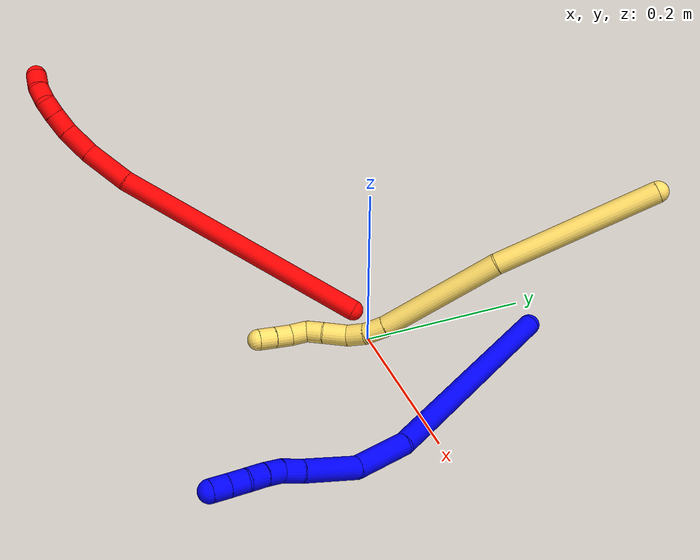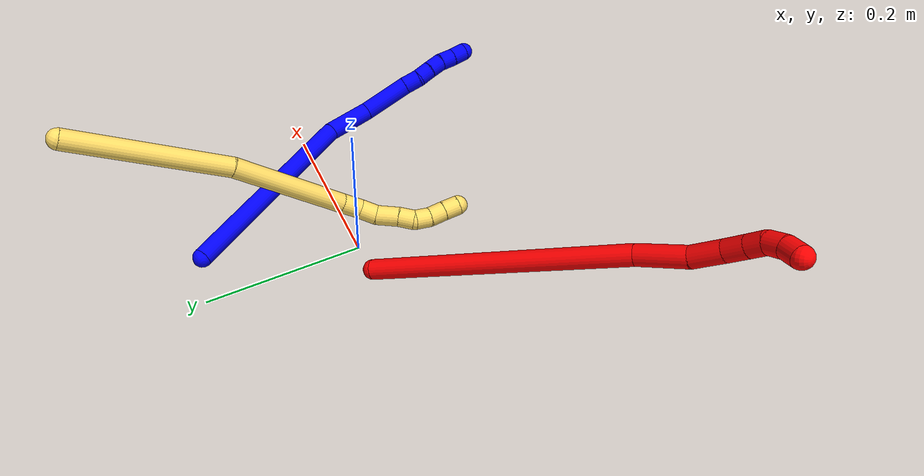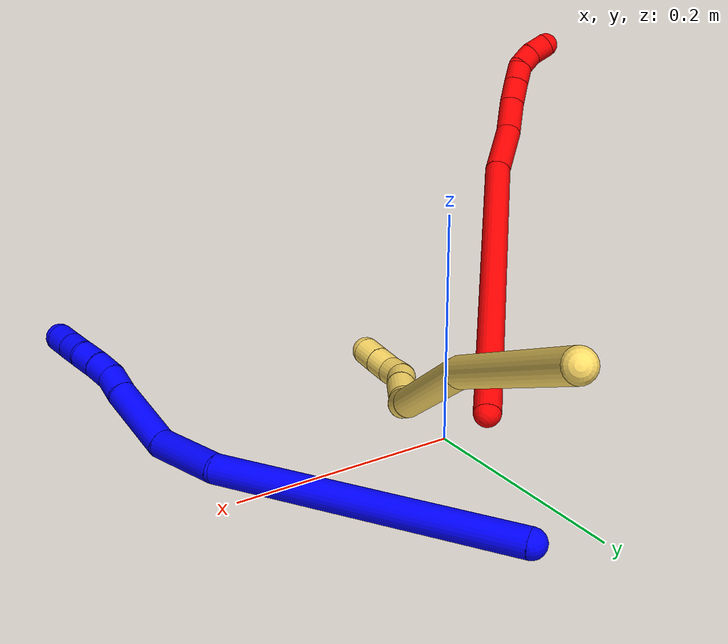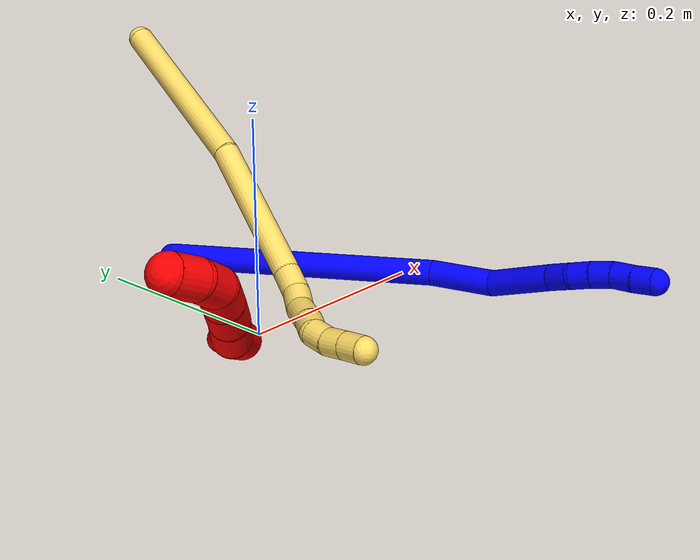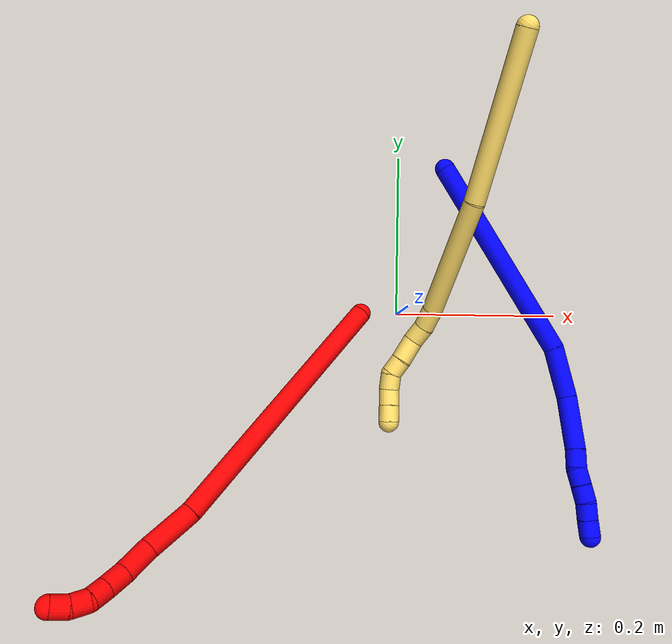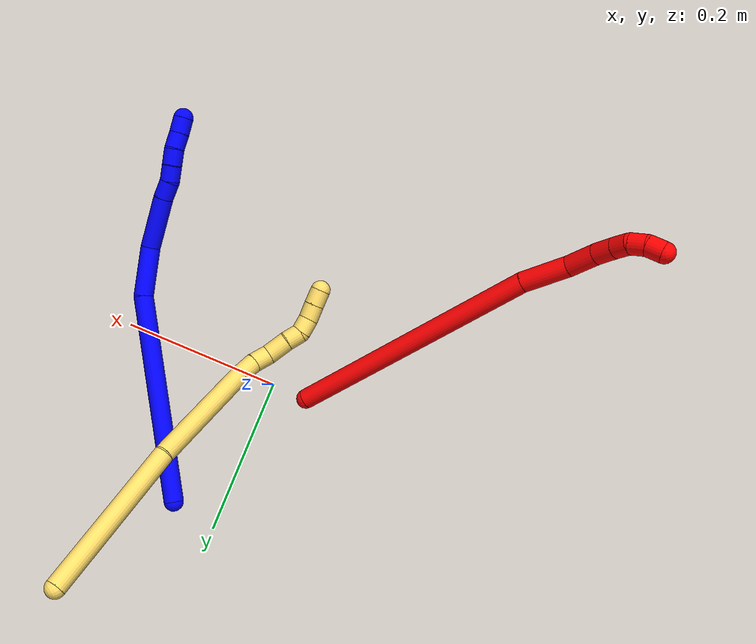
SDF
<sdf version="1.7">
 <world name="default">
  <model name="photoneo_s_sensor">
   <static>1</static>
   <pose>0 0 2 1.57079 1.57079 3.14159</pose>
   <link name="link">
    <inertial><mass>0.1</mass></inertial>
    <sensor name="sensor" type="depth">
     <update_rate>30</update_rate>
     <camera>
      <horizontal_fov>1.22</horizontal_fov>
      <image><width>1920</width><height>1200</height><format>B8G8R8</format></image>
      <clip><near>0.1</near><far>4</far></clip>
      <depth_camera><output>points</output></depth_camera>
     </camera>
     <plugin name="camera_plugin" filename="libgazebo_ros_depth_camera.so">
      <baseline>0.2</baseline>
      <alwaysOn>1</alwaysOn>
      <updateRate>0.0</updateRate>
      <cameraName>camera_ir</cameraName>
      <imageTopicName>/camera/color/image_raw</imageTopicName>
      <cameraInfoTopicName>/camera/color/camera_info</cameraInfoTopicName>
      <depthImageTopicName>/camera/depth/image_raw</depthImageTopicName>
      <depthImageCameraInfoTopicName>/camera/depth/camera_info</depthImageCameraInfoTopicName>
      <pointCloudTopicName>/camera/depth/points</pointCloudTopicName>
      <frameName>fr_optical</frameName>
      <pointCloudCutoff>0.1</pointCloudCutoff>
      <pointCloudCutoffMax>2.0</pointCloudCutoffMax>
      <distortionK1>0</distortionK1>
      <distortionK2>0</distortionK2>
      <distortionK3>0</distortionK3>
      <distortionT1>0</distortionT1>
      <distortionT2>0</distortionT2>
      <CxPrime>0</CxPrime>
      <Cx>0</Cx>
      <Cy>0</Cy>
      <focalLength>0</focalLength>
      <hackBaseline>0</hackBaseline>
     </plugin>
    </sensor>
   </link>
  </model>
  <model name="bin">
   <static>1</static>
   <link name="bottom">
    <collision name="collision-bottom">
     <pose>0 0 -0.01 0 -0 0</pose>
     <geometry><box><size>0.8 0.6 0.02</size></box></geometry>
     <surface>
      <friction><ode><mu>100</mu><mu2>100</mu2></ode></friction>
      <contact><collide_bitmask>65535</collide_bitmask></contact>
     </surface>
    </collision>
   </link>
   <link name="west_wall">
    <collision name="collision-west_wall">
     <pose>-0.41 0 0.1 0 -0 0</pose>
     <geometry><box><size>0.02 0.6 0.2</size></box></geometry>
     <surface>
      <friction><ode><mu>100</mu><mu2>100</mu2></ode></friction>
      <contact><collide_bitmask>65535</collide_bitmask></contact>
     </surface>
    </collision>
   </link>
   <link name="east_wall">
    <collision name="collision-east_wall">
     <pose>0.41 0 0.1 0 -0 0</pose>
     <geometry><box><size>0.02 0.6 0.2</size></box></geometry>
     <surface>
      <friction><ode><mu>100</mu><mu2>100</mu2></ode></friction>
      <contact><collide_bitmask>65535</collide_bitmask></contact>
     </surface>
    </collision>
   </link>
   <link name="south_wall">
    <collision name="collision-south_wall">
     <pose>0 -0.31 0.1 0 -0 0</pose>
     <geometry><box><size>0.8 0.02 0.2</size></box></geometry>
     <surface>
      <friction><ode><mu>100</mu><mu2>100</mu2></ode></friction>
      <contact><collide_bitmask>65535</collide_bitmask></contact>
     </surface>
    </collision>
   </link>
   <link name="north_wall">
    <collision name="collision-north_wall">
     <pose>0 0.31 0.1 0 -0 0</pose>
     <geometry><box><size>0.8 0.02 0.2</size></box></geometry>
     <surface>
      <friction><ode><mu>100</mu><mu2>100</mu2></ode></friction>
      <contact><collide_bitmask>65535</collide_bitmask></contact>
     </surface>
    </collision>
   </link>
  </model>
  <model name="1">
   <static>0</static>
   <link name="1">
    <collision name="collision-cylinder-e_1_1_4">
     <pose>0.039754 -0.099244 0.07849 0.90164 0.30442 0.148236</pose>
     <geometry><cylinder><radius>0.0125</radius><length>0.265257</length></cylinder></geometry>
     <surface>
      <friction><ode><mu>1.16</mu><mu2>1.16</mu2><slip1>0</slip1><slip2>0</slip2></ode></friction>
      <contact><ode><kp>1e+06</kp><kd>1</kd><max_vel>0</max_vel><min_depth>0.001</min_depth></ode></contact>
     </surface>
    </collision>
    <visual name="visual-cylinder-e_1_1_4">
     <pose>0.039754 -0.099244 0.07849 0.90164 0.30442 0.148236</pose>
     <geometry><cylinder><radius>0.0125</radius><length>0.265257</length></cylinder></geometry>
     <material><ambient>0 0 1 1</ambient></material>
    </visual>
    <collision name="collision-cylinder-e_2_4_5">
     <pose>0.092423 -0.225521 0.167946 1.18543 0.416775 0.282927</pose>
     <geometry><cylinder><radius>0.0125</radius><length>0.063808</length></cylinder></geometry>
     <surface>
      <friction><ode><mu>1.16</mu><mu2>1.16</mu2><slip1>0</slip1><slip2>0</slip2></ode></friction>
      <contact><ode><kp>1e+06</kp><kd>1</kd><max_vel>0</max_vel><min_depth>0.001</min_depth></ode></contact>
     </surface>
    </collision>
    <visual name="visual-cylinder-e_2_4_5">
     <pose>0.092423 -0.225521 0.167946 1.18543 0.416775 0.282927</pose>
     <geometry><cylinder><radius>0.0125</radius><length>0.063808</length></cylinder></geometry>
     <material><ambient>0 0 1 1</ambient></material>
    </visual>
    <collision name="collision-cylinder-e_3_5_6">
     <pose>0.111017 -0.28537 0.182448 1.46348 0.17038 0.153082</pose>
     <geometry><cylinder><radius>0.0125</radius><length>0.066981</length></cylinder></geometry>
     <surface>
      <friction><ode><mu>1.16</mu><mu2>1.16</mu2><slip1>0</slip1><slip2>0</slip2></ode></friction>
      <contact><ode><kp>1e+06</kp><kd>1</kd><max_vel>0</max_vel><min_depth>0.001</min_depth></ode></contact>
     </surface>
    </collision>
    <visual name="visual-cylinder-e_3_5_6">
     <pose>0.111017 -0.28537 0.182448 1.46348 0.17038 0.153082</pose>
     <geometry><cylinder><radius>0.0125</radius><length>0.066981</length></cylinder></geometry>
     <material><ambient>0 0 1 1</ambient></material>
    </visual>
    <collision name="collision-cylinder-e_4_6_7">
     <pose>0.118943 -0.3294 0.185966 1.57229 0.197746 0.198039</pose>
     <geometry><cylinder><radius>0.0125</radius><length>0.022873</length></cylinder></geometry>
     <surface>
      <friction><ode><mu>1.16</mu><mu2>1.16</mu2><slip1>0</slip1><slip2>0</slip2></ode></friction>
      <contact><ode><kp>1e+06</kp><kd>1</kd><max_vel>0</max_vel><min_depth>0.001</min_depth></ode></contact>
     </surface>
    </collision>
    <visual name="visual-cylinder-e_4_6_7">
     <pose>0.118943 -0.3294 0.185966 1.57229 0.197746 0.198039</pose>
     <geometry><cylinder><radius>0.0125</radius><length>0.022873</length></cylinder></geometry>
     <material><ambient>0 0 1 1</ambient></material>
    </visual>
    <collision name="collision-cylinder-e_5_7_8">
     <pose>0.123179 -0.350255 0.188508 1.31149 0.196833 0.151625</pose>
     <geometry><cylinder><radius>0.0125</radius><length>0.020344</length></cylinder></geometry>
     <surface>
      <friction><ode><mu>1.16</mu><mu2>1.16</mu2><slip1>0</slip1><slip2>0</slip2></ode></friction>
      <contact><ode><kp>1e+06</kp><kd>1</kd><max_vel>0</max_vel><min_depth>0.001</min_depth></ode></contact>
     </surface>
    </collision>
    <visual name="visual-cylinder-e_5_7_8">
     <pose>0.123179 -0.350255 0.188508 1.31149 0.196833 0.151625</pose>
     <geometry><cylinder><radius>0.0125</radius><length>0.020344</length></cylinder></geometry>
     <material><ambient>0 0 1 1</ambient></material>
    </visual>
    <collision name="collision-cylinder-e_6_8_9">
     <pose>0.12788 -0.36939 0.193927 1.27799 0.267009 0.198911</pose>
     <geometry><cylinder><radius>0.0125</radius><length>0.020557</length></cylinder></geometry>
     <surface>
      <friction><ode><mu>1.16</mu><mu2>1.16</mu2><slip1>0</slip1><slip2>0</slip2></ode></friction>
      <contact><ode><kp>1e+06</kp><kd>1</kd><max_vel>0</max_vel><min_depth>0.001</min_depth></ode></contact>
     </surface>
    </collision>
    <visual name="visual-cylinder-e_6_8_9">
     <pose>0.12788 -0.36939 0.193927 1.27799 0.267009 0.198911</pose>
     <geometry><cylinder><radius>0.0125</radius><length>0.020557</length></cylinder></geometry>
     <material><ambient>0 0 1 1</ambient></material>
    </visual>
    <collision name="collision-cylinder-e_7_9_10">
     <pose>0.134894 -0.387782 0.198489 1.38206 0.443345 0.368573</pose>
     <geometry><cylinder><radius>0.0125</radius><length>0.020061</length></cylinder></geometry>
     <surface>
      <friction><ode><mu>1.16</mu><mu2>1.16</mu2><slip1>0</slip1><slip2>0</slip2></ode></friction>
      <contact><ode><kp>1e+06</kp><kd>1</kd><max_vel>0</max_vel><min_depth>0.001</min_depth></ode></contact>
     </surface>
    </collision>
    <visual name="visual-cylinder-e_7_9_10">
     <pose>0.134894 -0.387782 0.198489 1.38206 0.443345 0.368573</pose>
     <geometry><cylinder><radius>0.0125</radius><length>0.020061</length></cylinder></geometry>
     <material><ambient>0 0 1 1</ambient></material>
    </visual>
    <collision name="collision-cylinder-e_8_10_2">
     <pose>0.14294 -0.405804 0.20218 1.3559 0.381264 0.308331</pose>
     <geometry><cylinder><radius>0.0125</radius><length>0.020118</length></cylinder></geometry>
     <surface>
      <friction><ode><mu>1.16</mu><mu2>1.16</mu2><slip1>0</slip1><slip2>0</slip2></ode></friction>
      <contact><ode><kp>1e+06</kp><kd>1</kd><max_vel>0</max_vel><min_depth>0.001</min_depth></ode></contact>
     </surface>
    </collision>
    <visual name="visual-cylinder-e_8_10_2">
     <pose>0.14294 -0.405804 0.20218 1.3559 0.381264 0.308331</pose>
     <geometry><cylinder><radius>0.0125</radius><length>0.020118</length></cylinder></geometry>
     <material><ambient>0 0 1 1</ambient></material>
    </visual>
    <collision name="collision-sphere-2">
     <pose>0.146683 -0.414926 0.204171 0 -0 0</pose>
     <geometry><sphere><radius>0.0125</radius></sphere></geometry>
     <surface>
      <friction><ode><mu>1.16</mu><mu2>1.16</mu2><slip1>0</slip1><slip2>0</slip2></ode></friction>
      <contact><ode><kp>1e+06</kp><kd>1</kd><max_vel>0</max_vel><min_depth>0.001</min_depth></ode></contact>
     </surface>
    </collision>
    <visual name="visual-sphere-2">
     <pose>0.146683 -0.414926 0.204171 0 -0 0</pose>
     <geometry><sphere><radius>0.0125</radius></sphere></geometry>
     <material><ambient>0 0 1 1</ambient></material>
    </visual>
    <collision name="collision-sphere-10">
     <pose>0.139197 -0.396682 0.200189 0 -0 0</pose>
     <geometry><sphere><radius>0.0125</radius></sphere></geometry>
     <surface>
      <friction><ode><mu>1.16</mu><mu2>1.16</mu2><slip1>0</slip1><slip2>0</slip2></ode></friction>
      <contact><ode><kp>1e+06</kp><kd>1</kd><max_vel>0</max_vel><min_depth>0.001</min_depth></ode></contact>
     </surface>
    </collision>
    <visual name="visual-sphere-10">
     <pose>0.139197 -0.396682 0.200189 0 -0 0</pose>
     <geometry><sphere><radius>0.0125</radius></sphere></geometry>
     <material><ambient>0 0 1 1</ambient></material>
    </visual>
    <collision name="collision-sphere-9">
     <pose>0.130592 -0.378882 0.196789 0 -0 0</pose>
     <geometry><sphere><radius>0.0125</radius></sphere></geometry>
     <surface>
      <friction><ode><mu>1.16</mu><mu2>1.16</mu2><slip1>0</slip1><slip2>0</slip2></ode></friction>
      <contact><ode><kp>1e+06</kp><kd>1</kd><max_vel>0</max_vel><min_depth>0.001</min_depth></ode></contact>
     </surface>
    </collision>
    <visual name="visual-sphere-9">
     <pose>0.130592 -0.378882 0.196789 0 -0 0</pose>
     <geometry><sphere><radius>0.0125</radius></sphere></geometry>
     <material><ambient>0 0 1 1</ambient></material>
    </visual>
    <collision name="collision-sphere-4">
     <pose>0.079508 -0.198487 0.15698 0 -0 0</pose>
     <geometry><sphere><radius>0.0125</radius></sphere></geometry>
     <surface>
      <friction><ode><mu>1.16</mu><mu2>1.16</mu2><slip1>0</slip1><slip2>0</slip2></ode></friction>
      <contact><ode><kp>1e+06</kp><kd>1</kd><max_vel>0</max_vel><min_depth>0.001</min_depth></ode></contact>
     </surface>
    </collision>
    <visual name="visual-sphere-4">
     <pose>0.079508 -0.198487 0.15698 0 -0 0</pose>
     <geometry><sphere><radius>0.0125</radius></sphere></geometry>
     <material><ambient>0 0 1 1</ambient></material>
    </visual>
    <collision name="collision-sphere-1">
     <geometry><sphere><radius>0.0125</radius></sphere></geometry>
     <surface>
      <friction><ode><mu>1.16</mu><mu2>1.16</mu2><slip1>0</slip1><slip2>0</slip2></ode></friction>
      <contact><ode><kp>1e+06</kp><kd>1</kd><max_vel>0</max_vel><min_depth>0.001</min_depth></ode></contact>
     </surface>
    </collision>
    <visual name="visual-sphere-1">
     <geometry><sphere><radius>0.0125</radius></sphere></geometry>
     <material><ambient>0 0 1 1</ambient></material>
    </visual>
    <collision name="collision-sphere-8">
     <pose>0.125168 -0.359897 0.191065 0 -0 0</pose>
     <geometry><sphere><radius>0.0125</radius></sphere></geometry>
     <surface>
      <friction><ode><mu>1.16</mu><mu2>1.16</mu2><slip1>0</slip1><slip2>0</slip2></ode></friction>
      <contact><ode><kp>1e+06</kp><kd>1</kd><max_vel>0</max_vel><min_depth>0.001</min_depth></ode></contact>
     </surface>
    </collision>
    <visual name="visual-sphere-8">
     <pose>0.125168 -0.359897 0.191065 0 -0 0</pose>
     <geometry><sphere><radius>0.0125</radius></sphere></geometry>
     <material><ambient>0 0 1 1</ambient></material>
    </visual>
    <collision name="collision-sphere-5">
     <pose>0.105339 -0.252554 0.178912 0 -0 0</pose>
     <geometry><sphere><radius>0.0125</radius></sphere></geometry>
     <surface>
      <friction><ode><mu>1.16</mu><mu2>1.16</mu2><slip1>0</slip1><slip2>0</slip2></ode></friction>
      <contact><ode><kp>1e+06</kp><kd>1</kd><max_vel>0</max_vel><min_depth>0.001</min_depth></ode></contact>
     </surface>
    </collision>
    <visual name="visual-sphere-5">
     <pose>0.105339 -0.252554 0.178912 0 -0 0</pose>
     <geometry><sphere><radius>0.0125</radius></sphere></geometry>
     <material><ambient>0 0 1 1</ambient></material>
    </visual>
    <collision name="collision-sphere-6">
     <pose>0.116696 -0.318186 0.185983 0 -0 0</pose>
     <geometry><sphere><radius>0.0125</radius></sphere></geometry>
     <surface>
      <friction><ode><mu>1.16</mu><mu2>1.16</mu2><slip1>0</slip1><slip2>0</slip2></ode></friction>
      <contact><ode><kp>1e+06</kp><kd>1</kd><max_vel>0</max_vel><min_depth>0.001</min_depth></ode></contact>
     </surface>
    </collision>
    <visual name="visual-sphere-6">
     <pose>0.116696 -0.318186 0.185983 0 -0 0</pose>
     <geometry><sphere><radius>0.0125</radius></sphere></geometry>
     <material><ambient>0 0 1 1</ambient></material>
    </visual>
    <collision name="collision-sphere-7">
     <pose>0.121189 -0.340613 0.18595 0 -0 0</pose>
     <geometry><sphere><radius>0.0125</radius></sphere></geometry>
     <surface>
      <friction><ode><mu>1.16</mu><mu2>1.16</mu2><slip1>0</slip1><slip2>0</slip2></ode></friction>
      <contact><ode><kp>1e+06</kp><kd>1</kd><max_vel>0</max_vel><min_depth>0.001</min_depth></ode></contact>
     </surface>
    </collision>
    <visual name="visual-sphere-7">
     <pose>0.121189 -0.340613 0.18595 0 -0 0</pose>
     <geometry><sphere><radius>0.0125</radius></sphere></geometry>
     <material><ambient>0 0 1 1</ambient></material>
    </visual>
    <inertial>
     <pose>0.074631 -0.196053 0.127763 0 -0 0</pose>
     <mass>0.5</mass>
     <inertia>
      <ixx>0.001777</ixx>
      <ixy>0</ixy>
      <ixz>0</ixz>
      <iyy>0.001232</iyy>
      <iyz>0</iyz>
      <izz>0.000756</izz>
     </inertia>
    </inertial>
   </link>
   <pose>0.058605 0.185474 0.011497 -1.9445 1.01314 -1.98854</pose>
  </model>
  <model name="2">
   <static>0</static>
   <link name="2">
    <collision name="collision-cylinder-e_1_1_4">
     <pose>-0.060789 -0.037595 0.142839 0.257364 -0.390436 -0.051162</pose>
     <geometry><cylinder><radius>0.0125</radius><length>0.319448</length></cylinder></geometry>
     <surface>
      <friction><ode><mu>1.16</mu><mu2>1.16</mu2><slip1>0</slip1><slip2>0</slip2></ode></friction>
      <contact><ode><kp>1e+06</kp><kd>1</kd><max_vel>0</max_vel><min_depth>0.001</min_depth></ode></contact>
     </surface>
    </collision>
    <visual name="visual-cylinder-e_1_1_4">
     <pose>-0.060789 -0.037595 0.142839 0.257364 -0.390436 -0.051162</pose>
     <geometry><cylinder><radius>0.0125</radius><length>0.319448</length></cylinder></geometry>
     <material><ambient>1 0 0 1</ambient></material>
    </visual>
    <collision name="collision-cylinder-e_2_4_5">
     <pose>-0.128835 -0.079797 0.313423 0.164524 -0.252479 -0.020927</pose>
     <geometry><cylinder><radius>0.0125</radius><length>0.058092</length></cylinder></geometry>
     <surface>
      <friction><ode><mu>1.16</mu><mu2>1.16</mu2><slip1>0</slip1><slip2>0</slip2></ode></friction>
      <contact><ode><kp>1e+06</kp><kd>1</kd><max_vel>0</max_vel><min_depth>0.001</min_depth></ode></contact>
     </surface>
    </collision>
    <visual name="visual-cylinder-e_2_4_5">
     <pose>-0.128835 -0.079797 0.313423 0.164524 -0.252479 -0.020927</pose>
     <geometry><cylinder><radius>0.0125</radius><length>0.058092</length></cylinder></geometry>
     <material><ambient>1 0 0 1</ambient></material>
    </visual>
    <collision name="collision-cylinder-e_3_5_6">
     <pose>-0.138553 -0.091341 0.358173 0.387378 -0.133281 -0.02618</pose>
     <geometry><cylinder><radius>0.0125</radius><length>0.037058</length></cylinder></geometry>
     <surface>
      <friction><ode><mu>1.16</mu><mu2>1.16</mu2><slip1>0</slip1><slip2>0</slip2></ode></friction>
      <contact><ode><kp>1e+06</kp><kd>1</kd><max_vel>0</max_vel><min_depth>0.001</min_depth></ode></contact>
     </surface>
    </collision>
    <visual name="visual-cylinder-e_3_5_6">
     <pose>-0.138553 -0.091341 0.358173 0.387378 -0.133281 -0.02618</pose>
     <geometry><cylinder><radius>0.0125</radius><length>0.037058</length></cylinder></geometry>
     <material><ambient>1 0 0 1</ambient></material>
    </visual>
    <collision name="collision-cylinder-e_4_6_7">
     <pose>-0.140973 -0.103192 0.386817 0.39944 0.003361 0.00068</pose>
     <geometry><cylinder><radius>0.0125</radius><length>0.02527</length></cylinder></geometry>
     <surface>
      <friction><ode><mu>1.16</mu><mu2>1.16</mu2><slip1>0</slip1><slip2>0</slip2></ode></friction>
      <contact><ode><kp>1e+06</kp><kd>1</kd><max_vel>0</max_vel><min_depth>0.001</min_depth></ode></contact>
     </surface>
    </collision>
    <visual name="visual-cylinder-e_4_6_7">
     <pose>-0.140973 -0.103192 0.386817 0.39944 0.003361 0.00068</pose>
     <geometry><cylinder><radius>0.0125</radius><length>0.02527</length></cylinder></geometry>
     <material><ambient>1 0 0 1</ambient></material>
    </visual>
    <collision name="collision-cylinder-e_5_7_8">
     <pose>-0.140232 -0.112054 0.407679 0.404546 0.069505 0.014259</pose>
     <geometry><cylinder><radius>0.0125</radius><length>0.020111</length></cylinder></geometry>
     <surface>
      <friction><ode><mu>1.16</mu><mu2>1.16</mu2><slip1>0</slip1><slip2>0</slip2></ode></friction>
      <contact><ode><kp>1e+06</kp><kd>1</kd><max_vel>0</max_vel><min_depth>0.001</min_depth></ode></contact>
     </surface>
    </collision>
    <visual name="visual-cylinder-e_5_7_8">
     <pose>-0.140232 -0.112054 0.407679 0.404546 0.069505 0.014259</pose>
     <geometry><cylinder><radius>0.0125</radius><length>0.020111</length></cylinder></geometry>
     <material><ambient>1 0 0 1</ambient></material>
    </visual>
    <collision name="collision-cylinder-e_6_8_9">
     <pose>-0.13784 -0.115918 0.426763 -0.008617 0.170063 -0.000735</pose>
     <geometry><cylinder><radius>0.0125</radius><length>0.020016</length></cylinder></geometry>
     <surface>
      <friction><ode><mu>1.16</mu><mu2>1.16</mu2><slip1>0</slip1><slip2>0</slip2></ode></friction>
      <contact><ode><kp>1e+06</kp><kd>1</kd><max_vel>0</max_vel><min_depth>0.001</min_depth></ode></contact>
     </surface>
    </collision>
    <visual name="visual-cylinder-e_6_8_9">
     <pose>-0.13784 -0.115918 0.426763 -0.008617 0.170063 -0.000735</pose>
     <geometry><cylinder><radius>0.0125</radius><length>0.020016</length></cylinder></geometry>
     <material><ambient>1 0 0 1</ambient></material>
    </visual>
    <collision name="collision-cylinder-e_7_9_2">
     <pose>-0.13264 -0.113466 0.44569 -0.255396 0.358182 -0.046479</pose>
     <geometry><cylinder><radius>0.0125</radius><length>0.020005</length></cylinder></geometry>
     <surface>
      <friction><ode><mu>1.16</mu><mu2>1.16</mu2><slip1>0</slip1><slip2>0</slip2></ode></friction>
      <contact><ode><kp>1e+06</kp><kd>1</kd><max_vel>0</max_vel><min_depth>0.001</min_depth></ode></contact>
     </surface>
    </collision>
    <visual name="visual-cylinder-e_7_9_2">
     <pose>-0.13264 -0.113466 0.44569 -0.255396 0.358182 -0.046479</pose>
     <geometry><cylinder><radius>0.0125</radius><length>0.020005</length></cylinder></geometry>
     <material><ambient>1 0 0 1</ambient></material>
    </visual>
    <collision name="collision-sphere-2">
     <pose>-0.129133 -0.111099 0.454754 0 -0 0</pose>
     <geometry><sphere><radius>0.0125</radius></sphere></geometry>
     <surface>
      <friction><ode><mu>1.16</mu><mu2>1.16</mu2><slip1>0</slip1><slip2>0</slip2></ode></friction>
      <contact><ode><kp>1e+06</kp><kd>1</kd><max_vel>0</max_vel><min_depth>0.001</min_depth></ode></contact>
     </surface>
    </collision>
    <visual name="visual-sphere-2">
     <pose>-0.129133 -0.111099 0.454754 0 -0 0</pose>
     <geometry><sphere><radius>0.0125</radius></sphere></geometry>
     <material><ambient>1 0 0 1</ambient></material>
    </visual>
    <collision name="collision-sphere-9">
     <pose>-0.136146 -0.115833 0.436626 0 -0 0</pose>
     <geometry><sphere><radius>0.0125</radius></sphere></geometry>
     <surface>
      <friction><ode><mu>1.16</mu><mu2>1.16</mu2><slip1>0</slip1><slip2>0</slip2></ode></friction>
      <contact><ode><kp>1e+06</kp><kd>1</kd><max_vel>0</max_vel><min_depth>0.001</min_depth></ode></contact>
     </surface>
    </collision>
    <visual name="visual-sphere-9">
     <pose>-0.136146 -0.115833 0.436626 0 -0 0</pose>
     <geometry><sphere><radius>0.0125</radius></sphere></geometry>
     <material><ambient>1 0 0 1</ambient></material>
    </visual>
    <collision name="collision-sphere-4">
     <pose>-0.121579 -0.075191 0.285678 0 -0 0</pose>
     <geometry><sphere><radius>0.0125</radius></sphere></geometry>
     <surface>
      <friction><ode><mu>1.16</mu><mu2>1.16</mu2><slip1>0</slip1><slip2>0</slip2></ode></friction>
      <contact><ode><kp>1e+06</kp><kd>1</kd><max_vel>0</max_vel><min_depth>0.001</min_depth></ode></contact>
     </surface>
    </collision>
    <visual name="visual-sphere-4">
     <pose>-0.121579 -0.075191 0.285678 0 -0 0</pose>
     <geometry><sphere><radius>0.0125</radius></sphere></geometry>
     <material><ambient>1 0 0 1</ambient></material>
    </visual>
    <collision name="collision-sphere-1">
     <geometry><sphere><radius>0.0125</radius></sphere></geometry>
     <surface>
      <friction><ode><mu>1.16</mu><mu2>1.16</mu2><slip1>0</slip1><slip2>0</slip2></ode></friction>
      <contact><ode><kp>1e+06</kp><kd>1</kd><max_vel>0</max_vel><min_depth>0.001</min_depth></ode></contact>
     </surface>
    </collision>
    <visual name="visual-sphere-1">
     <geometry><sphere><radius>0.0125</radius></sphere></geometry>
     <material><ambient>1 0 0 1</ambient></material>
    </visual>
    <collision name="collision-sphere-8">
     <pose>-0.139534 -0.116003 0.4169 0 -0 0</pose>
     <geometry><sphere><radius>0.0125</radius></sphere></geometry>
     <surface>
      <friction><ode><mu>1.16</mu><mu2>1.16</mu2><slip1>0</slip1><slip2>0</slip2></ode></friction>
      <contact><ode><kp>1e+06</kp><kd>1</kd><max_vel>0</max_vel><min_depth>0.001</min_depth></ode></contact>
     </surface>
    </collision>
    <visual name="visual-sphere-8">
     <pose>-0.139534 -0.116003 0.4169 0 -0 0</pose>
     <geometry><sphere><radius>0.0125</radius></sphere></geometry>
     <material><ambient>1 0 0 1</ambient></material>
    </visual>
    <collision name="collision-sphere-5">
     <pose>-0.136091 -0.084403 0.341168 0 -0 0</pose>
     <geometry><sphere><radius>0.0125</radius></sphere></geometry>
     <surface>
      <friction><ode><mu>1.16</mu><mu2>1.16</mu2><slip1>0</slip1><slip2>0</slip2></ode></friction>
      <contact><ode><kp>1e+06</kp><kd>1</kd><max_vel>0</max_vel><min_depth>0.001</min_depth></ode></contact>
     </surface>
    </collision>
    <visual name="visual-sphere-5">
     <pose>-0.136091 -0.084403 0.341168 0 -0 0</pose>
     <geometry><sphere><radius>0.0125</radius></sphere></geometry>
     <material><ambient>1 0 0 1</ambient></material>
    </visual>
    <collision name="collision-sphere-6">
     <pose>-0.141015 -0.098279 0.375177 0 -0 0</pose>
     <geometry><sphere><radius>0.0125</radius></sphere></geometry>
     <surface>
      <friction><ode><mu>1.16</mu><mu2>1.16</mu2><slip1>0</slip1><slip2>0</slip2></ode></friction>
      <contact><ode><kp>1e+06</kp><kd>1</kd><max_vel>0</max_vel><min_depth>0.001</min_depth></ode></contact>
     </surface>
    </collision>
    <visual name="visual-sphere-6">
     <pose>-0.141015 -0.098279 0.375177 0 -0 0</pose>
     <geometry><sphere><radius>0.0125</radius></sphere></geometry>
     <material><ambient>1 0 0 1</ambient></material>
    </visual>
    <collision name="collision-sphere-7">
     <pose>-0.14093 -0.108106 0.398457 0 -0 0</pose>
     <geometry><sphere><radius>0.0125</radius></sphere></geometry>
     <surface>
      <friction><ode><mu>1.16</mu><mu2>1.16</mu2><slip1>0</slip1><slip2>0</slip2></ode></friction>
      <contact><ode><kp>1e+06</kp><kd>1</kd><max_vel>0</max_vel><min_depth>0.001</min_depth></ode></contact>
     </surface>
    </collision>
    <visual name="visual-sphere-7">
     <pose>-0.14093 -0.108106 0.398457 0 -0 0</pose>
     <geometry><sphere><radius>0.0125</radius></sphere></geometry>
     <material><ambient>1 0 0 1</ambient></material>
    </visual>
    <inertial>
     <pose>-0.087666 -0.058963 0.225084 0 -0 0</pose>
     <mass>0.5</mass>
     <inertia>
      <ixx>0.002411</ixx>
      <ixy>0</ixy>
      <ixz>0</ixz>
      <iyy>0.002541</iyy>
      <iyz>0</iyz>
      <izz>0.001727</izz>
     </inertia>
    </inertial>
   </link>
   <pose>-0.046013 -0.000494 0.011492 -1.02007 -0.495702 1.66135</pose>
  </model>
  <model name="5">
   <static>0</static>
   <link name="5">
    <collision name="collision-cylinder-e_1_1_4">
     <pose>0.003775 -0.034356 -0.090775 2.77978 0.038872 0.211759</pose>
     <geometry><cylinder><radius>0.0125</radius><length>0.194265</length></cylinder></geometry>
     <surface>
      <friction><ode><mu>1.16</mu><mu2>1.16</mu2><slip1>0</slip1><slip2>0</slip2></ode></friction>
      <contact><ode><kp>1e+06</kp><kd>1</kd><max_vel>0</max_vel><min_depth>0.001</min_depth></ode></contact>
     </surface>
    </collision>
    <visual name="visual-cylinder-e_1_1_4">
     <pose>0.003775 -0.034356 -0.090775 2.77978 0.038872 0.211759</pose>
     <geometry><cylinder><radius>0.0125</radius><length>0.194265</length></cylinder></geometry>
     <material><ambient>1 0.858824 0.4 1</ambient></material>
    </visual>
    <collision name="collision-cylinder-e_2_4_5">
     <pose>0.021003 -0.088377 -0.251938 2.86915 0.18205 1.17497</pose>
     <geometry><cylinder><radius>0.0125</radius><length>0.148622</length></cylinder></geometry>
     <surface>
      <friction><ode><mu>1.16</mu><mu2>1.16</mu2><slip1>0</slip1><slip2>0</slip2></ode></friction>
      <contact><ode><kp>1e+06</kp><kd>1</kd><max_vel>0</max_vel><min_depth>0.001</min_depth></ode></contact>
     </surface>
    </collision>
    <visual name="visual-cylinder-e_2_4_5">
     <pose>0.021003 -0.088377 -0.251938 2.86915 0.18205 1.17497</pose>
     <geometry><cylinder><radius>0.0125</radius><length>0.148622</length></cylinder></geometry>
     <material><ambient>1 0.858824 0.4 1</ambient></material>
    </visual>
    <collision name="collision-cylinder-e_3_5_6">
     <pose>0.035166 -0.110555 -0.334696 2.94121 0.056093 0.544271</pose>
     <geometry><cylinder><radius>0.0125</radius><length>0.025286</length></cylinder></geometry>
     <surface>
      <friction><ode><mu>1.16</mu><mu2>1.16</mu2><slip1>0</slip1><slip2>0</slip2></ode></friction>
      <contact><ode><kp>1e+06</kp><kd>1</kd><max_vel>0</max_vel><min_depth>0.001</min_depth></ode></contact>
     </surface>
    </collision>
    <visual name="visual-cylinder-e_3_5_6">
     <pose>0.035166 -0.110555 -0.334696 2.94121 0.056093 0.544271</pose>
     <geometry><cylinder><radius>0.0125</radius><length>0.025286</length></cylinder></geometry>
     <material><ambient>1 0.858824 0.4 1</ambient></material>
    </visual>
    <collision name="collision-cylinder-e_4_6_7">
     <pose>0.034596 -0.113089 -0.3582 3.1397 -0.114365 -3.10846</pose>
     <geometry><cylinder><radius>0.0125</radius><length>0.022414</length></cylinder></geometry>
     <surface>
      <friction><ode><mu>1.16</mu><mu2>1.16</mu2><slip1>0</slip1><slip2>0</slip2></ode></friction>
      <contact><ode><kp>1e+06</kp><kd>1</kd><max_vel>0</max_vel><min_depth>0.001</min_depth></ode></contact>
     </surface>
    </collision>
    <visual name="visual-cylinder-e_4_6_7">
     <pose>0.034596 -0.113089 -0.3582 3.1397 -0.114365 -3.10846</pose>
     <geometry><cylinder><radius>0.0125</radius><length>0.022414</length></cylinder></geometry>
     <material><ambient>1 0.858824 0.4 1</ambient></material>
    </visual>
    <collision name="collision-cylinder-e_5_7_8">
     <pose>0.027262 -0.1148 -0.382358 3.01252 -0.431951 -2.56867</pose>
     <geometry><cylinder><radius>0.0125</radius><length>0.028924</length></cylinder></geometry>
     <surface>
      <friction><ode><mu>1.16</mu><mu2>1.16</mu2><slip1>0</slip1><slip2>0</slip2></ode></friction>
      <contact><ode><kp>1e+06</kp><kd>1</kd><max_vel>0</max_vel><min_depth>0.001</min_depth></ode></contact>
     </surface>
    </collision>
    <visual name="visual-cylinder-e_5_7_8">
     <pose>0.027262 -0.1148 -0.382358 3.01252 -0.431951 -2.56867</pose>
     <geometry><cylinder><radius>0.0125</radius><length>0.028924</length></cylinder></geometry>
     <material><ambient>1 0.858824 0.4 1</ambient></material>
    </visual>
    <collision name="collision-cylinder-e_6_8_9">
     <pose>0.017664 -0.116735 -0.40483 3.11579 -0.358786 -2.99956</pose>
     <geometry><cylinder><radius>0.0125</radius><length>0.020186</length></cylinder></geometry>
     <surface>
      <friction><ode><mu>1.16</mu><mu2>1.16</mu2><slip1>0</slip1><slip2>0</slip2></ode></friction>
      <contact><ode><kp>1e+06</kp><kd>1</kd><max_vel>0</max_vel><min_depth>0.001</min_depth></ode></contact>
     </surface>
    </collision>
    <visual name="visual-cylinder-e_6_8_9">
     <pose>0.017664 -0.116735 -0.40483 3.11579 -0.358786 -2.99956</pose>
     <geometry><cylinder><radius>0.0125</radius><length>0.020186</length></cylinder></geometry>
     <material><ambient>1 0.858824 0.4 1</ambient></material>
    </visual>
    <collision name="collision-cylinder-e_7_9_10">
     <pose>0.011526 -0.122084 -0.422559 2.58912 -0.260584 -0.865947</pose>
     <geometry><cylinder><radius>0.0125</radius><length>0.020138</length></cylinder></geometry>
     <surface>
      <friction><ode><mu>1.16</mu><mu2>1.16</mu2><slip1>0</slip1><slip2>0</slip2></ode></friction>
      <contact><ode><kp>1e+06</kp><kd>1</kd><max_vel>0</max_vel><min_depth>0.001</min_depth></ode></contact>
     </surface>
    </collision>
    <visual name="visual-cylinder-e_7_9_10">
     <pose>0.011526 -0.122084 -0.422559 2.58912 -0.260584 -0.865947</pose>
     <geometry><cylinder><radius>0.0125</radius><length>0.020138</length></cylinder></geometry>
     <material><ambient>1 0.858824 0.4 1</ambient></material>
    </visual>
    <collision name="collision-cylinder-e_8_10_11">
     <pose>0.00477 -0.133337 -0.437557 2.40044 -0.428643 -1.02133</pose>
     <geometry><cylinder><radius>0.0125</radius><length>0.020022</length></cylinder></geometry>
     <surface>
      <friction><ode><mu>1.16</mu><mu2>1.16</mu2><slip1>0</slip1><slip2>0</slip2></ode></friction>
      <contact><ode><kp>1e+06</kp><kd>1</kd><max_vel>0</max_vel><min_depth>0.001</min_depth></ode></contact>
     </surface>
    </collision>
    <visual name="visual-cylinder-e_8_10_11">
     <pose>0.00477 -0.133337 -0.437557 2.40044 -0.428643 -1.02133</pose>
     <geometry><cylinder><radius>0.0125</radius><length>0.020022</length></cylinder></geometry>
     <material><ambient>1 0.858824 0.4 1</ambient></material>
    </visual>
    <collision name="collision-cylinder-e_9_11_2">
     <pose>-0.003542 -0.145451 -0.451246 2.43382 -0.424911 -1.05697</pose>
     <geometry><cylinder><radius>0.0125</radius><length>0.020143</length></cylinder></geometry>
     <surface>
      <friction><ode><mu>1.16</mu><mu2>1.16</mu2><slip1>0</slip1><slip2>0</slip2></ode></friction>
      <contact><ode><kp>1e+06</kp><kd>1</kd><max_vel>0</max_vel><min_depth>0.001</min_depth></ode></contact>
     </surface>
    </collision>
    <visual name="visual-cylinder-e_9_11_2">
     <pose>-0.003542 -0.145451 -0.451246 2.43382 -0.424911 -1.05697</pose>
     <geometry><cylinder><radius>0.0125</radius><length>0.020143</length></cylinder></geometry>
     <material><ambient>1 0.858824 0.4 1</ambient></material>
    </visual>
    <collision name="collision-sphere-2">
     <pose>-0.007694 -0.151416 -0.458218 0 -0 0</pose>
     <geometry><sphere><radius>0.0125</radius></sphere></geometry>
     <surface>
      <friction><ode><mu>1.16</mu><mu2>1.16</mu2><slip1>0</slip1><slip2>0</slip2></ode></friction>
      <contact><ode><kp>1e+06</kp><kd>1</kd><max_vel>0</max_vel><min_depth>0.001</min_depth></ode></contact>
     </surface>
    </collision>
    <visual name="visual-sphere-2">
     <pose>-0.007694 -0.151416 -0.458218 0 -0 0</pose>
     <geometry><sphere><radius>0.0125</radius></sphere></geometry>
     <material><ambient>1 0.858824 0.4 1</ambient></material>
    </visual>
    <collision name="collision-sphere-11">
     <pose>0.000609 -0.139485 -0.444274 0 -0 0</pose>
     <geometry><sphere><radius>0.0125</radius></sphere></geometry>
     <surface>
      <friction><ode><mu>1.16</mu><mu2>1.16</mu2><slip1>0</slip1><slip2>0</slip2></ode></friction>
      <contact><ode><kp>1e+06</kp><kd>1</kd><max_vel>0</max_vel><min_depth>0.001</min_depth></ode></contact>
     </surface>
    </collision>
    <visual name="visual-sphere-11">
     <pose>0.000609 -0.139485 -0.444274 0 -0 0</pose>
     <geometry><sphere><radius>0.0125</radius></sphere></geometry>
     <material><ambient>1 0.858824 0.4 1</ambient></material>
    </visual>
    <collision name="collision-sphere-10">
     <pose>0.008931 -0.12719 -0.43084 0 -0 0</pose>
     <geometry><sphere><radius>0.0125</radius></sphere></geometry>
     <surface>
      <friction><ode><mu>1.16</mu><mu2>1.16</mu2><slip1>0</slip1><slip2>0</slip2></ode></friction>
      <contact><ode><kp>1e+06</kp><kd>1</kd><max_vel>0</max_vel><min_depth>0.001</min_depth></ode></contact>
     </surface>
    </collision>
    <visual name="visual-sphere-10">
     <pose>0.008931 -0.12719 -0.43084 0 -0 0</pose>
     <geometry><sphere><radius>0.0125</radius></sphere></geometry>
     <material><ambient>1 0.858824 0.4 1</ambient></material>
    </visual>
    <collision name="collision-sphere-9">
     <pose>0.01412 -0.116978 -0.414277 0 -0 0</pose>
     <geometry><sphere><radius>0.0125</radius></sphere></geometry>
     <surface>
      <friction><ode><mu>1.16</mu><mu2>1.16</mu2><slip1>0</slip1><slip2>0</slip2></ode></friction>
      <contact><ode><kp>1e+06</kp><kd>1</kd><max_vel>0</max_vel><min_depth>0.001</min_depth></ode></contact>
     </surface>
    </collision>
    <visual name="visual-sphere-9">
     <pose>0.01412 -0.116978 -0.414277 0 -0 0</pose>
     <geometry><sphere><radius>0.0125</radius></sphere></geometry>
     <material><ambient>1 0.858824 0.4 1</ambient></material>
    </visual>
    <collision name="collision-sphere-4">
     <pose>0.00755 -0.068712 -0.181551 0 -0 0</pose>
     <geometry><sphere><radius>0.0125</radius></sphere></geometry>
     <surface>
      <friction><ode><mu>1.16</mu><mu2>1.16</mu2><slip1>0</slip1><slip2>0</slip2></ode></friction>
      <contact><ode><kp>1e+06</kp><kd>1</kd><max_vel>0</max_vel><min_depth>0.001</min_depth></ode></contact>
     </surface>
    </collision>
    <visual name="visual-sphere-4">
     <pose>0.00755 -0.068712 -0.181551 0 -0 0</pose>
     <geometry><sphere><radius>0.0125</radius></sphere></geometry>
     <material><ambient>1 0.858824 0.4 1</ambient></material>
    </visual>
    <collision name="collision-sphere-1">
     <geometry><sphere><radius>0.0125</radius></sphere></geometry>
     <surface>
      <friction><ode><mu>1.16</mu><mu2>1.16</mu2><slip1>0</slip1><slip2>0</slip2></ode></friction>
      <contact><ode><kp>1e+06</kp><kd>1</kd><max_vel>0</max_vel><min_depth>0.001</min_depth></ode></contact>
     </surface>
    </collision>
    <visual name="visual-sphere-1">
     <geometry><sphere><radius>0.0125</radius></sphere></geometry>
     <material><ambient>1 0.858824 0.4 1</ambient></material>
    </visual>
    <collision name="collision-sphere-8">
     <pose>0.021208 -0.116491 -0.395383 0 -0 0</pose>
     <geometry><sphere><radius>0.0125</radius></sphere></geometry>
     <surface>
      <friction><ode><mu>1.16</mu><mu2>1.16</mu2><slip1>0</slip1><slip2>0</slip2></ode></friction>
      <contact><ode><kp>1e+06</kp><kd>1</kd><max_vel>0</max_vel><min_depth>0.001</min_depth></ode></contact>
     </surface>
    </collision>
    <visual name="visual-sphere-8">
     <pose>0.021208 -0.116491 -0.395383 0 -0 0</pose>
     <geometry><sphere><radius>0.0125</radius></sphere></geometry>
     <material><ambient>1 0.858824 0.4 1</ambient></material>
    </visual>
    <collision name="collision-sphere-5">
     <pose>0.034457 -0.108042 -0.322325 0 -0 0</pose>
     <geometry><sphere><radius>0.0125</radius></sphere></geometry>
     <surface>
      <friction><ode><mu>1.16</mu><mu2>1.16</mu2><slip1>0</slip1><slip2>0</slip2></ode></friction>
      <contact><ode><kp>1e+06</kp><kd>1</kd><max_vel>0</max_vel><min_depth>0.001</min_depth></ode></contact>
     </surface>
    </collision>
    <visual name="visual-sphere-5">
     <pose>0.034457 -0.108042 -0.322325 0 -0 0</pose>
     <geometry><sphere><radius>0.0125</radius></sphere></geometry>
     <material><ambient>1 0.858824 0.4 1</ambient></material>
    </visual>
    <collision name="collision-sphere-6">
     <pose>0.035875 -0.113068 -0.347066 0 -0 0</pose>
     <geometry><sphere><radius>0.0125</radius></sphere></geometry>
     <surface>
      <friction><ode><mu>1.16</mu><mu2>1.16</mu2><slip1>0</slip1><slip2>0</slip2></ode></friction>
      <contact><ode><kp>1e+06</kp><kd>1</kd><max_vel>0</max_vel><min_depth>0.001</min_depth></ode></contact>
     </surface>
    </collision>
    <visual name="visual-sphere-6">
     <pose>0.035875 -0.113068 -0.347066 0 -0 0</pose>
     <geometry><sphere><radius>0.0125</radius></sphere></geometry>
     <material><ambient>1 0.858824 0.4 1</ambient></material>
    </visual>
    <collision name="collision-sphere-7">
     <pose>0.033317 -0.11311 -0.369334 0 -0 0</pose>
     <geometry><sphere><radius>0.0125</radius></sphere></geometry>
     <surface>
      <friction><ode><mu>1.16</mu><mu2>1.16</mu2><slip1>0</slip1><slip2>0</slip2></ode></friction>
      <contact><ode><kp>1e+06</kp><kd>1</kd><max_vel>0</max_vel><min_depth>0.001</min_depth></ode></contact>
     </surface>
    </collision>
    <visual name="visual-sphere-7">
     <pose>0.033317 -0.11311 -0.369334 0 -0 0</pose>
     <geometry><sphere><radius>0.0125</radius></sphere></geometry>
     <material><ambient>1 0.858824 0.4 1</ambient></material>
    </visual>
    <inertial>
     <pose>0.013842 -0.077748 -0.234322 0 -0 0</pose>
     <mass>0.5</mass>
     <inertia>
      <ixx>0.001088</ixx>
      <ixy>0</ixy>
      <ixz>0</ixz>
      <iyy>-0.000284</iyy>
      <iyz>0</iyz>
      <izz>0.000189</izz>
     </inertia>
    </inertial>
   </link>
   <pose>0.121281 0.293504 0.209539 -0.061284 1.13948 0.861759</pose>
  </model>
 </world>
</sdf>
